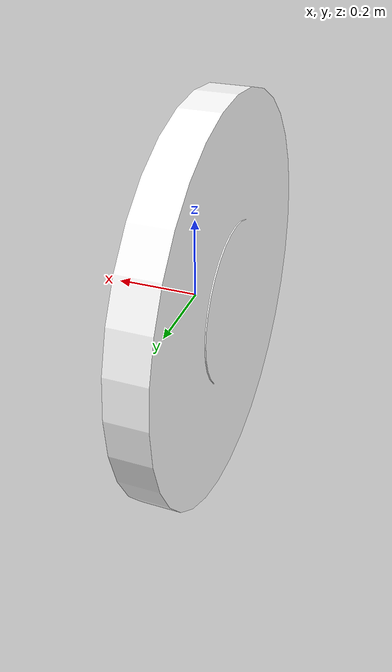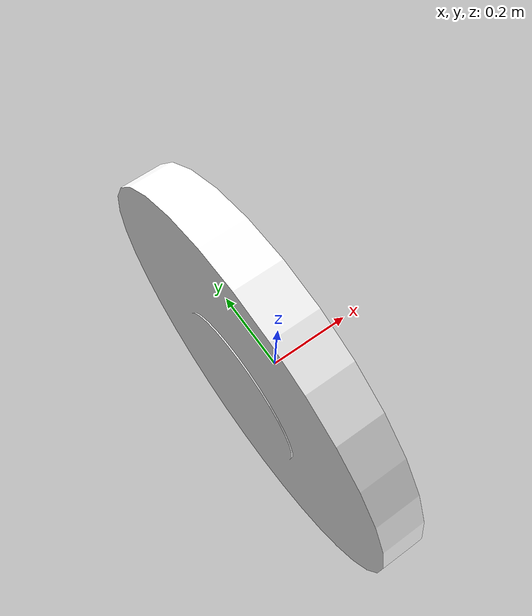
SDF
<?xml version='1.0'?>
<sdf version='1.6'>
  <model name='platform'>
    <link name='platform'>
      <pose frame=''>0 0 0 0 0 -1.5707</pose>
      <inertial>
        <pose frame=''>0.75 0.30851 0.19941 0 -0 0</pose>
        <mass>437.49</mass>
        <inertia>
          <ixx>36.584</ixx>
          <ixy>0</ixy>
          <ixz>0</ixz>
          <iyy>88.65</iyy>
          <iyz>0</iyz>
          <izz>107.21</izz>
        </inertia>
      </inertial>
      <self_collide>0</self_collide>
      <kinematic>0</kinematic>
      <gravity>1</gravity>
      <visual name='platform_visual'>
        <pose frame=''>0 0 0 1.5708 -0 0</pose>
        <geometry>
          <mesh>
            <scale>1 1 1</scale>
            <uri>/home/shourish/catkin_ws/src/platform/meshes/platform.STL</uri>
          </mesh>
        </geometry>
        <cast_shadows>1</cast_shadows>
        <transparency>0</transparency>
        <material>
          <shader type='vertex'>
            <normal_map>__default__</normal_map>
          </shader>
          <ambient>0 1 0 0</ambient>
          <diffuse>1 1 1 1</diffuse>
          <specular>0 0 0 1</specular>
          <emissive>0 0 0 1</emissive>
          <script>
            <name>ModelPreview_4::platform::platform_visual_MATERIAL_</name>
            <uri>__default__</uri>
          </script>
        </material>
      </visual>
      <collision name='platform_collision'>
        <laser_retro>0</laser_retro>
        <max_contacts>10</max_contacts>
        <pose frame=''>0 0 0 1.5708 -0 0</pose>
        <geometry>
          <mesh>
            <uri>/home/shourish/catkin_ws/src/platform/meshes/platform.STL</uri>
          </mesh>
        </geometry>
        <surface>
          <friction>
            <ode>
              <mu>2</mu>
              <mu2>2</mu2>
              <fdir1>0 0 0</fdir1>
              <slip1>0</slip1>
              <slip2>0</slip2>
            </ode>
            <torsional>
              <coefficient>1</coefficient>
              <patch_radius>0</patch_radius>
              <surface_radius>0</surface_radius>
              <use_patch_radius>1</use_patch_radius>
              <ode>
                <slip>0</slip>
              </ode>
            </torsional>
          </friction>
          <bounce>
            <restitution_coefficient>0</restitution_coefficient>
            <threshold>100000</threshold>
          </bounce>
          <contact>
            <collide_without_contact>0</collide_without_contact>
            <collide_without_contact_bitmask>1</collide_without_contact_bitmask>
            <collide_bitmask>1</collide_bitmask>
            <ode>
              <soft_cfm>0</soft_cfm>
              <soft_erp>0.2</soft_erp>
              <kp>1e+13</kp>
              <kd>1</kd>
              <max_vel>0.01</max_vel>
              <min_depth>0</min_depth>
            </ode>
            <bullet>
              <split_impulse>1</split_impulse>
              <split_impulse_penetration_threshold>-0.01</split_impulse_penetration_threshold>
              <soft_cfm>0</soft_cfm>
              <soft_erp>0.2</soft_erp>
              <kp>1e+13</kp>
              <kd>1</kd>
            </bullet>
          </contact>
        </surface>
      </collision>
    </link>
    <static>0</static>
    <allow_auto_disable>1</allow_auto_disable>
  </model>
</sdf>
